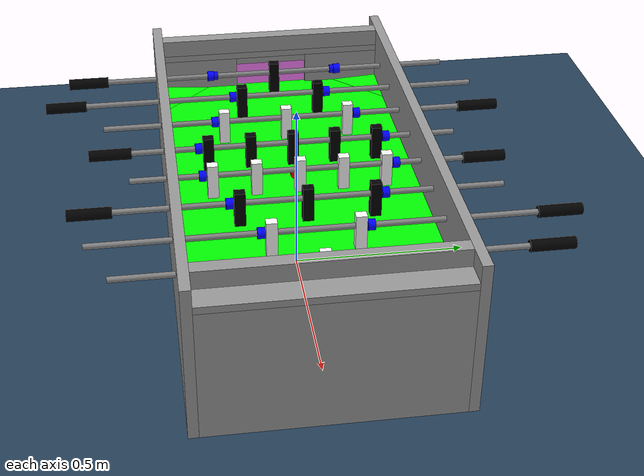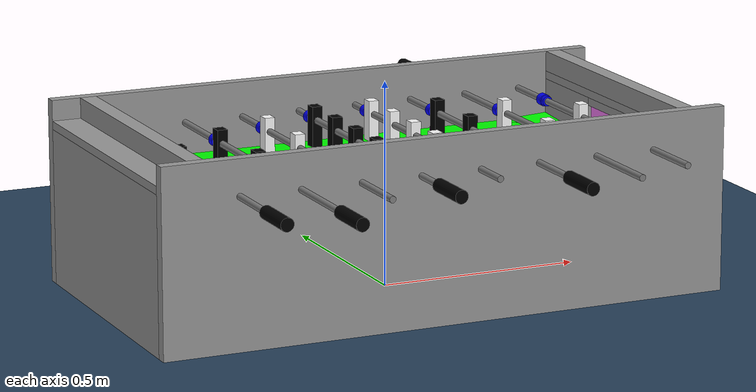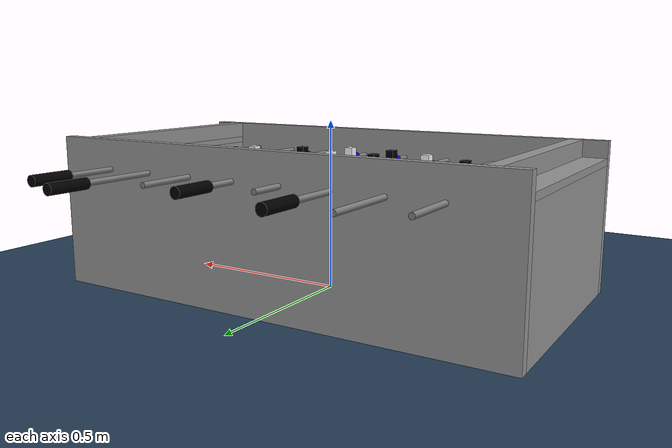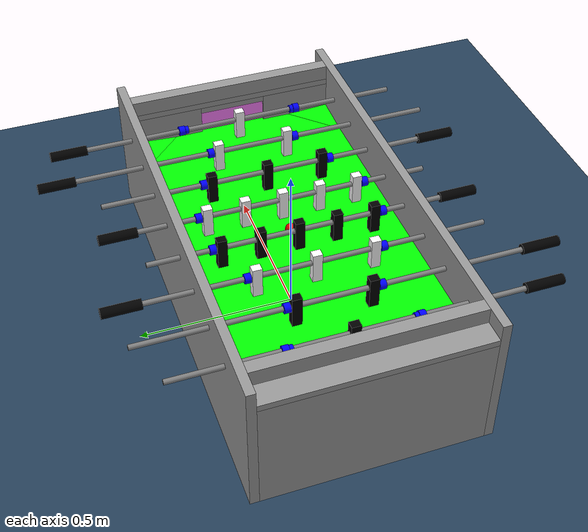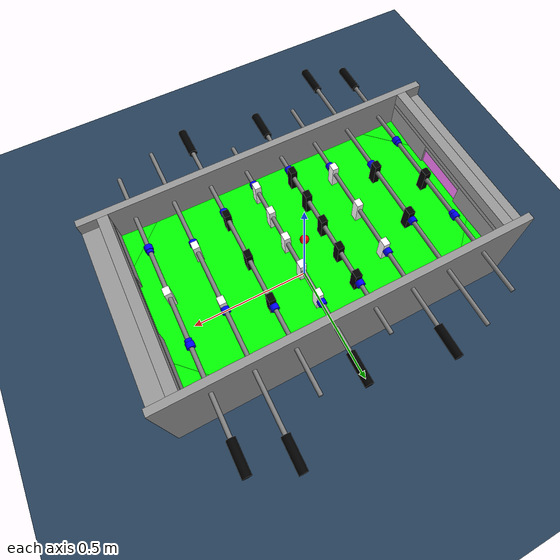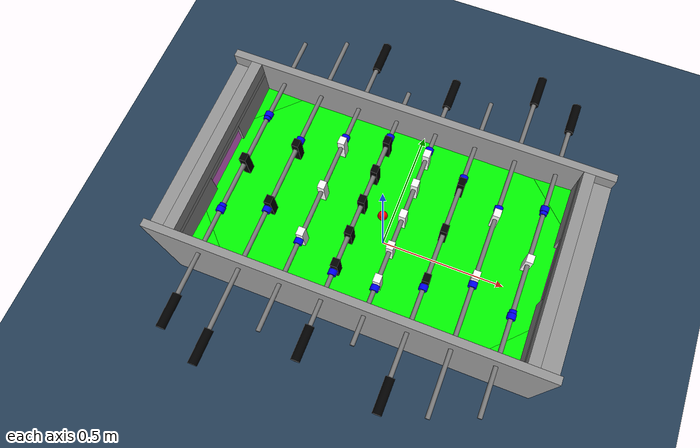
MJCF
<mujoco model="kicker">

    <option timestep="0.001" integrator="implicitfast"/>

    <default class="main">
        <joint armature="1" damping="1"/>
        <default class="plastic">
            <default class="figure">
                <geom condim="3" mass="0.046" solimp="0.4 0.45 0.01" solref="-200000 -20" friction="0.15 0.0005 0.0001"
                      contype="2" conaffinity="1" type="box" size="0.0125 0.015 0.05" rgba="0 0 0 1"/>
            </default>
            <default class="stopper">
                <geom condim="3" mass="0.046" solimp="0.4 0.45 0.01" solref="-200000 -20" friction="0.15 0.0005 0.0001"
                      contype="8" conaffinity="1" quat="1 1 0 0" type="cylinder" size="0.015 0.01" rgba="0 0 1 1"/>
            </default>
            <default class="ball">
                <geom condim="6" mass="0.021" solimp="0.2 0.3 0.01" solref="-125000 -85" friction="0.015 0.005 0.002"
                      contype="1" conaffinity="30" priority="1" type="sphere" size="0.0175" rgba="1 0 0 1"/>
            </default>
            <default class="field">
                <geom condim="6" solimp="0.4 0.45 0.01" solref="-200000 -20" friction="0.15 0.0005 0.0001"
                      rgba="0 1 0 1" conaffinity="1"/>
            </default>
            <default class="wall">
                <geom condim="6" solimp="0.4 0.45 0.01" solref="-200000 -20" friction="0.15 0.0005 0.0001"
                      rgba="0.6 0.6 0.6 1" contype="4" conaffinity="1"/>
            </default>
            <default class="handle">
                <geom priority="1" mass="0.104" type="cylinder" size="0.016 0.0595" conaffinity="0" quat="1 1 0 0"
                      rgba="0 0 0 1"/>
            </default>
        </default>
        <default class="metal">
            <geom priority="1" density="7700" condim="3" solref="-250000 -10" friction="0.005 0.00005 0.0001"
                  type="cylinder" size="0.008" rgba="0.5 0.5 0.5 1" contype="16" conaffinity="0"/>
        </default>
        <default class="slide_motor">
            <motor forcelimited="true" forcerange="-26 26" ctrllimited="true" ctrlrange="-1.0 1.0" gear="26"/>
        </default>
        <default class="hinge_motor">
            <motor forcelimited="true" forcerange="-7.4 7.4" ctrllimited="true" ctrlrange="-1.0 1.0" gear="750"/>
        </default>
    </default>

    <asset>
        <texture type="skybox" builtin="gradient" rgb1="0.3 0.5 0.7" rgb2="0 0 0" width="512" height="3072"/>
        <texture type="2d" name="groundplane" builtin="checker" mark="edge" rgb1="0.2 0.3 0.4" rgb2="0.1 0.2 0.3"
                 markrgb="0.8 0.8 0.8" width="300" height="300"/>
        <material name="groundplane" texture="groundplane" texuniform="true" texrepeat="5 5" reflectance="0.2"/>
    </asset>

    <visual>
        <headlight diffuse="0.6 0.6 0.6" ambient="0.3 0.3 0.3" specular="0 0 0"/>
        <rgba haze="0.15 0.25 0.35 1"/>
        <global azimuth="-130" elevation="-20"/>
    </visual>

    <worldbody>
        <light cutoff="100" diffuse="1 1 1" dir="0 0 -1" directional="true" pos="0 0 1"/>
        <geom name="floor" size="0 0 0.05" type="plane" material="groundplane"/>
        <camera name="table_view" pos="0 0 1.5" resolution="640 480" xyaxes="1 0 0 0 1 0"/>

        <!-- Table -->
        <body name="table" pos="0 0 0">
            <!-- Table Surface -->
            <body name="field" pos="0 0 0.28">
                <geom type="box" class="field" pos="0.5375 0.26375 -0.005"
                      size="0.075 0.0775 0.01" euler="3.5 -3.5 0"/>
                <geom type="box" class="field" pos="-0.5375 0.26375 -0.005"
                      size="0.075 0.0775 0.01" euler="3.5 3.5 0"/>
                <geom type="box" class="field" pos="-0.5375 -0.26375 -0.005"
                      size="0.075 0.0775 0.01" euler="-3.5 3.5 0"/>
                <geom type="box" class="field" pos="0.5375 -0.26375 -0.005"
                      size="0.075 0.0775 0.01" euler="-3.5 -3.5 0"/>
                <geom type="box" class="field" pos="0 0 -0.005" size="0.6085 0.34 0.01"/>
            </body>

            <body name="frame_top_black" pos="-0.7 0 0">
                <geom type="box" class="wall" pos="0 0 0.19" size="0.01 0.34 0.19"/>
                <geom type="box" class="wall" pos="0.081 0 0.425" size="0.02 0.34 0.025"/>
                <geom type="box" class="wall" pos="0.0455 0 0.39" size="0.0555 0.34 0.01"/>
            </body>

            <body name="frame_top_white" pos="0.7 0 0" quat="0 0 0 1">
                <geom type="box" class="wall" pos="0 0 0.19" size="0.01 0.34 0.19"/>
                <geom type="box" class="wall" pos="0.081 0 0.425" size="0.02 0.34 0.025"/>
                <geom type="box" class="wall" pos="0.0455 0 0.39" size="0.0555 0.34 0.01"/>
            </body>

            <body name="long_wall_left" pos="0 -0.354 0">
                <geom type="box" class="wall" pos="0 0 0.225" size="0.71 0.014 0.225"/>
            </body>

            <body name="long_wall_right" pos="0 0.354 0">
                <geom type="box" class="wall" pos="0 0 0.225" size="0.71 0.014 0.225"/>
            </body>

            <body name="short_wall_white" pos="0.608 -0.1 0.3305" quat="0 1 0 0">
                <geom type="box" class="wall" pos="0.001 0.125 0" size="0.01 0.115 0.05" />
                <geom type="box" class="wall" pos="0.001 -0.325 0" size="0.01 0.115 0.05" />
                <geom type="box" class="wall" pos="0.001 -0.1 -0.04" size="0.01 0.11 0.01" />
            </body>

            <body name="short_wall_black" pos="-0.608 0 0.3305" quat="0 0 1 0">
                <geom type="box" class="wall" pos="0.001 0.225 0" size="0.01 0.115 0.05" />
                <geom type="box" class="wall" pos="0.001 -0.225 0" size="0.01 0.115 0.05" />
                <geom type="box" class="wall" pos="0.001 0 -0.04" size="0.01 0.11 0.01" />
            </body>

            <body name="white_goal" pos="0.608 0 0.3305">
                <geom type="box" pos="0.07525 0 -0.06" size="0.0025 0.15 0.1"/>
                <geom type="box" pos="0.045 0.1475 -0.06" size="0.035 0.0025 0.1"/>
                <geom type="box" pos="0.045 -0.1475 -0.06" size="0.035 0.0025 0.1"/>
                <geom type="box" pos="0.045 0 0.0375" size="0.035 0.15 0.0025"/>
                <geom type="box" pos="0.045 0 -0.1575" size="0.035 0.15 0.0025"/>
                <geom type="box" pos="0.005 0 -0.10275" size="0.005 0.15 0.05725"/>
                <site name="white_goal_site" type="box" pos="0.04 0 -0.06" size="0.04 0.15 0.1" rgba="1 0.5 1 1"/>
            </body>

            <body name="black_goal" pos="-0.608 0 0.3305">
                <geom type="box" pos="-0.07525 0 -0.06" size="0.0025 0.15 0.1"/>
                <geom type="box" pos="-0.045 0.1475 -0.06" size="0.035 0.0025 0.1"/>
                <geom type="box" pos="-0.045 -0.1475 -0.06" size="0.035 0.0025 0.1"/>
                <geom type="box" pos="-0.045 0 0.0375" size="0.035 0.15 0.0025"/>
                <geom type="box" pos="-0.045 0 -0.1575" size="0.035 0.15 0.0025"/>
                <geom type="box" pos="-0.005 0 -0.10275" size="0.005 0.15 0.05725"/>
                <site name="black_goal_site" type="box" pos="-0.04 0 -0.06" size="0.04 0.15 0.1" rgba="1 0.5 1 1"/>
            </body>
        </body>

        <!-- Ball -->
        <!-- qpos: pos (3 dim), quat (4 dim) -->
        <!-- qvel: pos (3 dim), eul (3 dim) -->
        <body name="ball" pos="0 0 0.305">
            <freejoint/>
            <geom class="ball"/>
            <site name="ball_site" pos="0 0 0" size="0.0175" rgba="0 0 0 1"/>
        </body>

        <!-- Black Team -->
        <!-- qpos: lateral (1 dim), angular (1 dim) -->
        <!-- qvel: lateral (1 dim), angular (1 dim) -->
        <body name="b_g" pos="-0.522 0 0.3025">
            <joint name="b_g_slide" type="slide" range="-0.1271 0.1291" axis="0 1 0"/>
            <joint name="b_g_hinge" type="hinge" range="-90 90" axis="0 1 0" pos="0 0 0.0605"/>
            <geom class="handle" pos="0 -0.5775 0.0605"/>
            <geom class="metal" fromto="0 -0.635 0.0605 0 0.535 0.0605"/>
            <site name="b_g_site" type="cylinder" fromto="0 -0.635 0.0605 0 0.535 0.0605" size="0.008"/>

            <geom class="stopper" mass="0.02" pos="0 -0.183 0.0605" size="0.0125 0.006"/>
            <geom class="stopper" mass="0.02" pos="0 0.183 0.0605" size="0.0125 0.006"/>
            <geom class="stopper" pos="0 -0.199 0.0605"/>
            <geom class="stopper" pos="0 0.199 0.0605"/>

            <geom name="player1_1" class="figure" pos="0 0 0.0445"/>
            <site name="b_g_1" size="0.005" pos="0 0 0.05" rgba="0 0 1 1"/>
        </body>

        <!-- qpos: lateral (1 dim), angular (1 dim) -->
        <!-- qvel: lateral (1 dim), angular (1 dim) -->
        <body name="b_d" pos="-0.3728 0 0.3025">
            <joint name="b_d_slide" type="slide" range="-0.1832 0.185" axis="0 1 0"/>
            <joint name="b_d_hinge" type="hinge" range="-90 90" axis="0 1 0" pos="0 0 0.0605"/>
            <geom class="handle" pos="0 -0.6445 0.0605"/>
            <geom class="metal" fromto="0 -0.702 0.0605 0 0.593 0.0605"/>
            <site name="b_d_site" type="cylinder" fromto="0 -0.702 0.0605 0 0.593 0.0605" size="0.008" rgba="0 0 1 1"/>

            <geom class="stopper" pos="0 -0.143 0.0605"/>
            <geom class="stopper" pos="0 0.143 0.0605"/>

            <geom name="player2_1" class="figure" pos="0 0.116 0.0445"/>
            <site name="b_d_1" size="0.005" pos="0 -0.116 0.05" rgba="0 0 1 1"/>

            <geom name="player2_2" class="figure" pos="0 -0.116 0.0445"/>
            <site name="b_d_2" size="0.005" pos="0 0.116 0.05" rgba="0 0 1 1"/>
        </body>

        <!-- qpos: lateral (1 dim), angular (1 dim) -->
        <!-- qvel: lateral (1 dim), angular (1 dim) -->
        <body name="b_m" pos="-0.075 0 0.3025">
            <joint name="b_m_slide" type="slide" range="-0.0571 0.059" axis="0 1 0"/>
            <joint name="b_m_hinge" type="hinge" range="-90 90" axis="0 1 0" pos="0 -0.1 0.0605"/>
            <geom class="handle" pos="0 -0.5185 0.0605"/>
            <geom class="metal" fromto="0 -0.576 0.0605 0 0.469 0.0605"/>
            <site name="b_m_site" type="cylinder" fromto="0 -0.576 0.0605 0 0.469 0.0605" size="0.008" rgba="0 0 1 1"/>

            <geom class="stopper" pos="0 -0.269 0.0605"/>
            <geom class="stopper" pos="0 0.269 0.0605"/>

            <geom name="player3_1" class="figure" pos="0 -0.242 0.0445"/>
            <site name="b_m_1" size="0.005" pos="0 -0.242 0.05"/>

            <geom name="player3_2" class="figure" pos="0 -0.121 0.0445"/>
            <site name="b_m_2" size="0.005" pos="0 -0.121 0.05"/>

            <geom name="player3_3" class="figure" pos="0 0 0.0445"/>
            <site name="b_m_3" size="0.005" pos="0 -0.0 0.05"/>

            <geom name="player3_4" class="figure" pos="0 0.121 0.0445"/>
            <site name="b_m_4" size="0.005" pos="0 0.121 0.05" rgba="0 0 1 1"/>

            <geom name="player3_5" class="figure" pos="0 0.242 0.0445"/>
            <site name="b_m_5" size="0.005" pos="0 0.242 0.05" rgba="0 0 1 1"/>
        </body>

        <!-- qpos: lateral (1 dim), angular (1 dim) -->
        <!-- qvel: lateral (1 dim), angular (1 dim) -->
        <body name="b_s" pos="0.22395 0 0.3025">
            <joint name="b_s_slide" type="slide" range="-0.1161 0.118" axis="0 1 0"/>
            <joint name="b_s_hinge" type="hinge" range="-90 90" axis="0 1 0" pos="0 0 0.0605"/>
            <geom class="handle" pos="0 -0.5775 0.0605"/>
            <geom class="metal" fromto="0 -0.635 0.0605 0 0.535 0.0605"/>
            <site name="b_s_site" type="cylinder" fromto="0 -0.635 0.0605 0 0.535 0.0605" size="0.008" rgba="0 0 1 1"/>

            <geom class="stopper" pos="0 -0.21 0.0605"/>
            <geom class="stopper" pos="0 0.21 0.0605"/>

            <geom name="player4_1" class="figure" pos="0 -0.183 0.0445"/>
            <site name="b_s_1" size="0.005" pos="0 -0.183 0.05" rgba="0 0 1 1"/>

            <geom name="player4_2" class="figure" pos="0 0 0.0445"/>
            <site name="b_s_2" size="0.005" pos="0 0 0.05" rgba="0 0 1 1"/>

            <geom name="player4_3" class="figure" pos="0 0.183 0.0445"/>
            <site name="b_s_3" size="0.005" pos="0 0.183 0.05" rgba="0 0 1 1"/>
        </body>

        <!-- White Team -->
        <!-- qpos: lateral (1 dim), angular (1 dim) -->
        <!-- qvel: lateral (1 dim), angular (1 dim) -->
        <body name="w_g" pos="0.522 0 0.3025">
            <joint name="w_g_slide" type="slide" range="-0.1281 0.1291" axis="0 1 0"/>
            <joint name="w_g_hinge" type="hinge" range="-90 90" axis="0 1 0" pos="0 0 0.0605"/>
            <geom class="handle" pos="0 0.5775 0.0605"/>
            <geom class="metal" fromto="0 -0.535 0.0605 0 0.635 0.0605"/>
            <site name="w_g_site" type="cylinder" fromto="0 -0.535 0.0605 0 0.635 0.0605" size="0.008" rgba="0 0 1 1"/>

            <geom class="stopper" pos="0 -0.199 0.0605"/>
            <geom class="stopper" pos="0 0.199 0.0605"/>
            <geom class="stopper" mass="0.02" pos="0 -0.183 0.0605" size="0.0125 0.006"/>
            <geom class="stopper" mass="0.02" pos="0 0.183 0.0605" size="0.0125 0.006"/>

            <geom name="player5_1" class="figure" pos="0 0 0.0445" rgba="1 1 1 1"/>
            <site name="w_g_1" size="0.005" pos="0 0 0.05" rgba="0 0 1 1"/>
        </body>

        <!-- qpos: lateral (1 dim), angular (1 dim) -->
        <!-- qvel: lateral (1 dim), angular (1 dim) -->
        <body name="w_d" pos="0.3728 0 0.3025">
            <joint name="w_d_slide" type="slide" range="-0.1842 0.185" axis="0 1 0"/>
            <joint name="w_d_hinge" type="hinge" range="-90 90" axis="0 1 0" pos="0 0 0.0605"/>
            <geom class="handle" pos="0 0.6445 0.0605"/>
            <geom class="metal" fromto="0 -0.593 0.0605 0 0.702 0.0605"/>
            <site name="w_d_site" type="cylinder" fromto="0 -0.593 0.0605 0 0.702 0.0605" size="0.008" rgba="0 0 1 1"/>

            <geom class="stopper" pos="0 -0.143 0.0605"/>
            <geom class="stopper" pos="0 0.143 0.0605"/>

            <geom name="player6_1" class="figure" pos="0 -0.116 0.0445" rgba="1 1 1 1"/>
            <site name="w_d_1" size="0.005" pos="0 -0.116 0.05" rgba="0 0 1 1"/>

            <geom name="player6_2" class="figure" pos="0 0.116 0.0445" rgba="1 1 1 1"/>
            <site name="w_d_2" size="0.005" pos="0 0.116 0.05" rgba="0 0 1 1"/>
        </body>

        <!-- qpos: lateral (1 dim), angular (1 dim) -->
        <!-- qvel: lateral (1 dim), angular (1 dim) 3025, aber 294 ist korrekt, +6mm ist genau 3 -->
        <body name="w_m" pos="0.075 0 0.3025">
            <joint name="w_m_slide" type="slide" range="-0.0581 0.059" axis="0 1 0"/>
            <joint name="w_m_hinge" type="hinge" range="-90 90" axis="0 1 0" pos="0 -0.1 0.0605"/>
            <geom class="handle" pos="0 0.5185 0.0605"/>
            <geom class="metal" fromto="0 -0.469 0.0605 0 0.576 0.0605"/>
            <site name="w_m_site" type="cylinder" fromto="0 -0.469 0.0605 0 0.576 0.0605" size="0.008" rgba="0 0 1 1"/>

            <geom class="stopper" pos="0 -0.269 0.0605"/>
            <geom class="stopper" pos="0 0.269 0.0605"/>

            <geom name="player7_1" class="figure" pos="0 -0.242 0.0445" rgba="1 1 1 1"/>
            <site name="w_m_1" size="0.005" pos="0 -0.242 0.05" rgba="0 0 1 1"/>

            <geom name="player7_2" class="figure" pos="0 -0.121 0.0445" rgba="1 1 1 1"/>
            <site name="w_m_2" size="0.005" pos="0 -0.121 0.05" rgba="0 0 1 1"/>

            <geom name="player7_3" class="figure" pos="0 0 0.0445" rgba="1 1 1 1"/>
            <site name="w_m_3" size="0.005" pos="0 0 0.05" rgba="0 0 1 1"/>

            <geom name="player7_4" class="figure" pos="0 0.121 0.0445" rgba="1 1 1 1"/>
            <site name="w_m_4" size="0.005" pos="0 0.121 0.05" rgba="0 0 1 1"/>

            <geom name="player7_5" class="figure" pos="0 0.242 0.0445" rgba="1 1 1 1"/>
            <site name="w_m_5" size="0.005" pos="0 0.242 0.05" rgba="0 0 1 1"/>
        </body>

        <!-- qpos: lateral (1 dim), angular (1 dim) -->
        <!-- qvel: lateral (1 dim), angular (1 dim) 0.0575-->
        <body name="w_s" pos="-0.22395 0 0.3025">
            <joint name="w_s_slide" type="slide" range="-0.1171 0.118" axis="0 1 0"/>
            <joint name="w_s_hinge" type="hinge" range="-90 90" axis="0 1 0" pos="0 0 0.0605"/>
            <geom class="handle" pos="0 0.5775 0.0605"/>
            <geom class="metal" fromto="0 -0.535 0.0605 0 0.635 0.0605"/>
            <site name="w_s_site" type="cylinder" fromto="0 -0.535 0.0605 0 0.635 0.0605" size="0.008" rgba="0 0 1 1"/>

            <geom class="stopper" pos="0 -0.21 0.0605"/>
            <geom class="stopper" pos="0 0.21 0.0605"/>

            <geom name="player8_1" class="figure" pos="0 -0.183 0.0445" rgba="1 1 1 1"/>
            <site name="w_s_1" size="0.005" pos="0 -0.183 0.05" rgba="0 0 1 1"/>

            <geom name="player8_2" class="figure" pos="0 0 0.0445" rgba="1 1 1 1"/>
            <site name="w_s_2" size="0.005" pos="0 0 0.05" rgba="0 0 1 1"/>

            <geom name="player8_3" class="figure" pos="0 0.183 0.0445" rgba="1 1 1 1"/>
            <site name="w_s_3" size="0.005" pos="0 0.183 0.05" rgba="0 0 1 1"/>
        </body>
    </worldbody>

    <actuator>
        <!-- black team actuators -->
        <motor group="0" name="b_g_slide_motor" class="slide_motor" joint="b_g_slide"/>
        <motor group="0" name="b_g_hinge_motor" class="hinge_motor" joint="b_g_hinge"/>
        <motor group="0" name="b_d_slide_motor" class="slide_motor" joint="b_d_slide"/>
        <motor group="0" name="b_d_hinge_motor" class="hinge_motor" joint="b_d_hinge"/>
        <motor group="0" name="b_m_slide_motor" class="slide_motor" joint="b_m_slide"/>
        <motor group="0" name="b_m_hinge_motor" class="hinge_motor" joint="b_m_hinge"/>
        <motor group="0" name="b_s_slide_motor" class="slide_motor" joint="b_s_slide"/>
        <motor group="0" name="b_s_hinge_motor" class="hinge_motor" joint="b_s_hinge"/>
        <!-- white team actuators -->
        <motor group="1" name="w_g_slide_motor" class="slide_motor" joint="w_g_slide"/>
        <motor group="1" name="w_g_hinge_motor" class="hinge_motor" joint="w_g_hinge"/>
        <motor group="1" name="w_d_slide_motor" class="slide_motor" joint="w_d_slide"/>
        <motor group="1" name="w_d_hinge_motor" class="hinge_motor" joint="w_d_hinge"/>
        <motor group="1" name="w_m_slide_motor" class="slide_motor" joint="w_m_slide"/>
        <motor group="1" name="w_m_hinge_motor" class="hinge_motor" joint="w_m_hinge"/>
        <motor group="1" name="w_s_slide_motor" class="slide_motor" joint="w_s_slide"/>
        <motor group="1" name="w_s_hinge_motor" class="hinge_motor" joint="w_s_hinge"/>
    </actuator>

    <sensor>
        <touch name="black_goal_sensor" site="black_goal_site"/> <!-- 1 dim -->
        <touch name="white_goal_sensor" site="white_goal_site"/> <!-- 1 dim -->
        <velocimeter name="ball_vel_sensor" site="ball_site"/> <!-- 3 dim -->
        <accelerometer name="ball_acc_sensor" site="ball_site"/> <!-- 3 dim -->
        <!-- black team: 16 dims-->
        <jointpos name="b_g_slide_pos_sensor" joint="b_g_slide"/> <!-- 1 dim -->
        <jointvel name="b_g_slide_vel_sensor" joint="b_g_slide"/> <!-- 1 dim -->
        <jointpos name="b_g_hinge_pos_sensor" joint="b_g_hinge"/> <!-- 1 dim -->
        <jointvel name="b_g_hinge_vel_sensor" joint="b_g_hinge"/> <!-- 1 dim -->
        <jointpos name="b_d_slide_pos_sensor" joint="b_d_slide"/> <!-- 1 dim -->
        <jointvel name="b_d_slide_vel_sensor" joint="b_d_slide"/> <!-- 1 dim -->
        <jointpos name="b_d_hinge_pos_sensor" joint="b_d_hinge"/> <!-- 1 dim -->
        <jointvel name="b_d_hinge_vel_sensor" joint="b_d_hinge"/> <!-- 1 dim -->
        <jointpos name="b_m_slide_pos_sensor" joint="b_m_slide"/> <!-- 1 dim -->
        <jointvel name="b_m_slide_vel_sensor" joint="b_m_slide"/> <!-- 1 dim -->
        <jointpos name="b_m_hinge_pos_sensor" joint="b_m_hinge"/> <!-- 1 dim -->
        <jointvel name="b_m_hinge_vel_sensor" joint="b_m_hinge"/> <!-- 1 dim -->
        <jointpos name="b_s_slide_pos_sensor" joint="b_s_slide"/> <!-- 1 dim -->
        <jointvel name="b_s_slide_vel_sensor" joint="b_s_slide"/> <!-- 1 dim -->
        <jointpos name="b_s_hinge_pos_sensor" joint="b_s_hinge"/> <!-- 1 dim -->
        <jointvel name="b_s_hinge_vel_sensor" joint="b_s_hinge"/> <!-- 1 dim -->
        <!-- white team: 16 dims-->
        <jointpos name="w_g_slide_pos_sensor" joint="w_g_slide"/> <!-- 1 dim -->
        <jointvel name="w_g_slide_vel_sensor" joint="w_g_slide"/> <!-- 1 dim -->
        <jointpos name="w_g_hinge_pos_sensor" joint="w_g_hinge"/> <!-- 1 dim -->
        <jointvel name="w_g_hinge_vel_sensor" joint="w_g_hinge"/> <!-- 1 dim -->
        <jointpos name="w_d_slide_pos_sensor" joint="w_d_slide"/> <!-- 1 dim -->
        <jointvel name="w_d_slide_vel_sensor" joint="w_d_slide"/> <!-- 1 dim -->
        <jointpos name="w_d_hinge_pos_sensor" joint="w_d_hinge"/> <!-- 1 dim -->
        <jointvel name="w_d_hinge_vel_sensor" joint="w_d_hinge"/> <!-- 1 dim -->
        <jointpos name="w_m_slide_pos_sensor" joint="w_m_slide"/> <!-- 1 dim -->
        <jointvel name="w_m_slide_vel_sensor" joint="w_m_slide"/> <!-- 1 dim -->
        <jointpos name="w_m_hinge_pos_sensor" joint="w_m_hinge"/> <!-- 1 dim -->
        <jointvel name="w_m_hinge_vel_sensor" joint="w_m_hinge"/> <!-- 1 dim -->
        <jointpos name="w_s_slide_pos_sensor" joint="w_s_slide"/> <!-- 1 dim -->
        <jointvel name="w_s_slide_vel_sensor" joint="w_s_slide"/> <!-- 1 dim -->
        <jointpos name="w_s_hinge_pos_sensor" joint="w_s_hinge"/> <!-- 1 dim -->
        <jointvel name="w_s_hinge_vel_sensor" joint="w_s_hinge"/> <!-- 1 dim -->
    </sensor>

    <keyframe>
        <key name="0" qvel="-1 0 0 0 0 0 0 0 0 0 0 0 0 0 0 0 0 0 0 0 0 0"/>
        <key name="1" qpos="0.57606 0.3 0.8075 0 0 0 0 0 0 0 0 0 0 0 0 0 0 0 0 0 0 0 0"/>
    </keyframe>
</mujoco>
